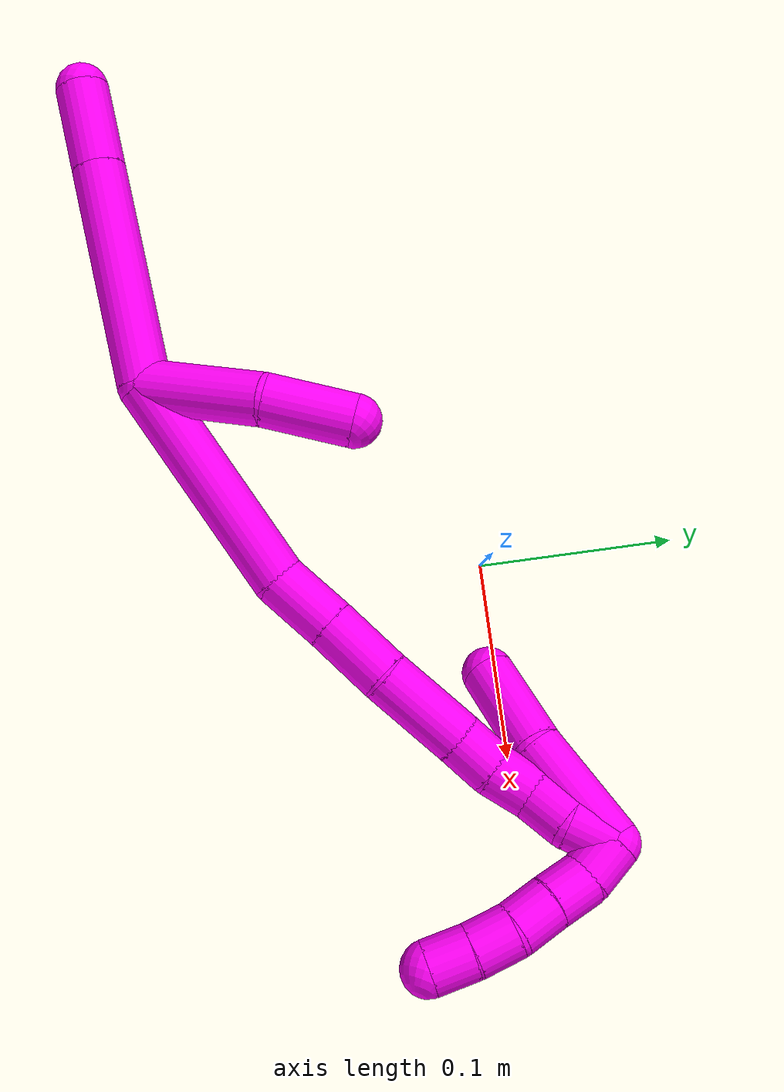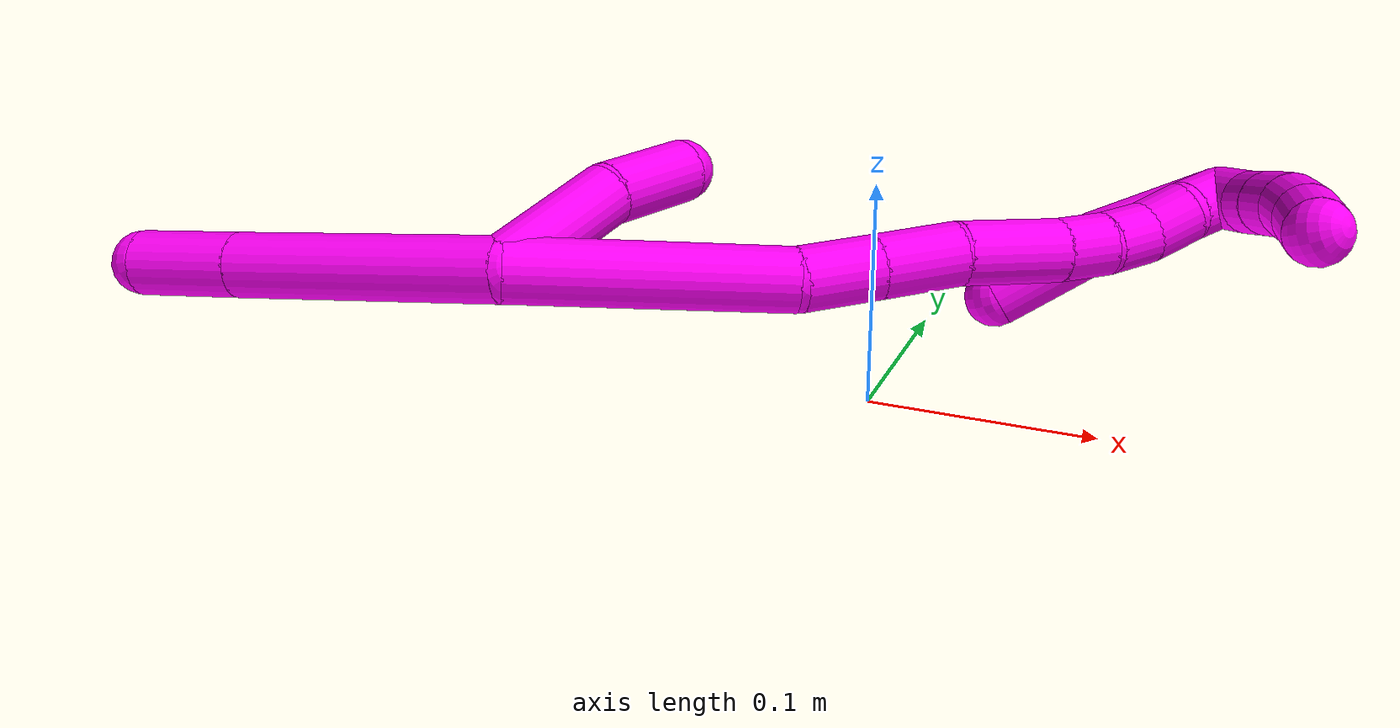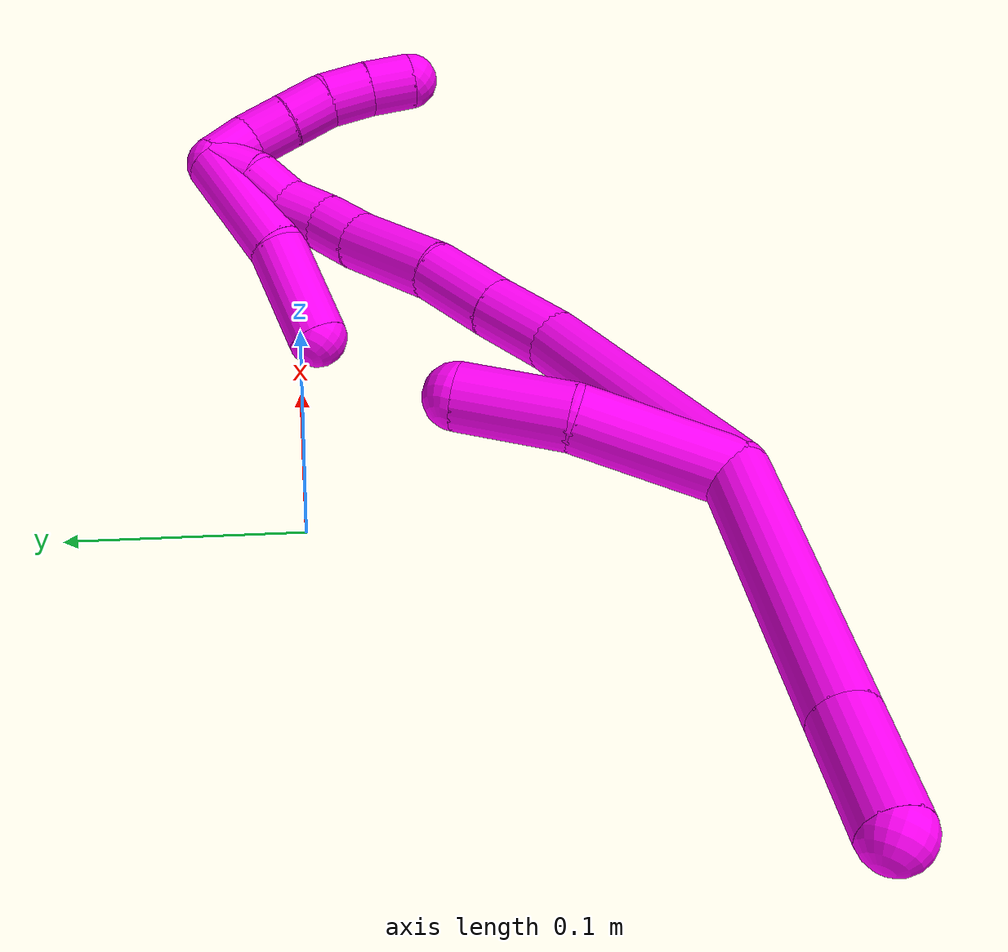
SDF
<sdf version="1.7">
 <world name="default">
  <model name="10">
   <static>0</static>
   <link name="10">
    <collision name="collision-cylinder-e_1_2_8">
     <pose>-0.026856 -0.021586 -0.041759 2.66451 -0.519043 -1.65856</pose>
     <geometry><cylinder><radius>0.0125</radius><length>0.108278</length></cylinder></geometry>
     <surface>
      <friction><ode><mu>1.16</mu><mu2>1.16</mu2><slip1>0</slip1><slip2>0</slip2></ode></friction>
      <contact><ode><kp>1e+06</kp><kd>1</kd><max_vel>0</max_vel><min_depth>0.001</min_depth></ode></contact>
     </surface>
    </collision>
    <visual name="visual-cylinder-e_1_2_8">
     <pose>-0.026856 -0.021586 -0.041759 2.66451 -0.519043 -1.65856</pose>
     <geometry><cylinder><radius>0.0125</radius><length>0.108278</length></cylinder></geometry>
     <material><ambient>1 0 0.964706 1</ambient></material>
    </visual>
    <collision name="collision-cylinder-e_2_8_6">
     <pose>-0.064142 -0.051414 -0.099595 2.66788 -0.523632 -1.67506</pose>
     <geometry><cylinder><radius>0.0125</radius><length>0.041722</length></cylinder></geometry>
     <surface>
      <friction><ode><mu>1.16</mu><mu2>1.16</mu2><slip1>0</slip1><slip2>0</slip2></ode></friction>
      <contact><ode><kp>1e+06</kp><kd>1</kd><max_vel>0</max_vel><min_depth>0.001</min_depth></ode></contact>
     </surface>
    </collision>
    <visual name="visual-cylinder-e_2_8_6">
     <pose>-0.064142 -0.051414 -0.099595 2.66788 -0.523632 -1.67506</pose>
     <geometry><cylinder><radius>0.0125</radius><length>0.041722</length></cylinder></geometry>
     <material><ambient>1 0 0.964706 1</ambient></material>
    </visual>
    <collision name="collision-cylinder-e_1_2_9">
     <pose>0.005273 0.028483 -0.003415 -1.69011 0.181771 -0.204711</pose>
     <geometry><cylinder><radius>0.0125</radius><length>0.058336</length></cylinder></geometry>
     <surface>
      <friction><ode><mu>1.16</mu><mu2>1.16</mu2><slip1>0</slip1><slip2>0</slip2></ode></friction>
      <contact><ode><kp>1e+06</kp><kd>1</kd><max_vel>0</max_vel><min_depth>0.001</min_depth></ode></contact>
     </surface>
    </collision>
    <visual name="visual-cylinder-e_1_2_9">
     <pose>0.005273 0.028483 -0.003415 -1.69011 0.181771 -0.204711</pose>
     <geometry><cylinder><radius>0.0125</radius><length>0.058336</length></cylinder></geometry>
     <material><ambient>1 0 0.964706 1</ambient></material>
    </visual>
    <collision name="collision-cylinder-e_2_9_5">
     <pose>0.019236 0.075628 -0.010023 -1.74033 0.430343 -0.507135</pose>
     <geometry><cylinder><radius>0.0125</radius><length>0.041664</length></cylinder></geometry>
     <surface>
      <friction><ode><mu>1.16</mu><mu2>1.16</mu2><slip1>0</slip1><slip2>0</slip2></ode></friction>
      <contact><ode><kp>1e+06</kp><kd>1</kd><max_vel>0</max_vel><min_depth>0.001</min_depth></ode></contact>
     </surface>
    </collision>
    <visual name="visual-cylinder-e_2_9_5">
     <pose>0.019236 0.075628 -0.010023 -1.74033 0.430343 -0.507135</pose>
     <geometry><cylinder><radius>0.0125</radius><length>0.041664</length></cylinder></geometry>
     <material><ambient>1 0 0.964706 1</ambient></material>
    </visual>
    <collision name="collision-cylinder-e_1_2_10">
     <pose>0.035068 0.032531 0.024667 -0.92203 0.709688 -0.364019</pose>
     <geometry><cylinder><radius>0.0125</radius><length>0.107638</length></cylinder></geometry>
     <surface>
      <friction><ode><mu>1.16</mu><mu2>1.16</mu2><slip1>0</slip1><slip2>0</slip2></ode></friction>
      <contact><ode><kp>1e+06</kp><kd>1</kd><max_vel>0</max_vel><min_depth>0.001</min_depth></ode></contact>
     </surface>
    </collision>
    <visual name="visual-cylinder-e_1_2_10">
     <pose>0.035068 0.032531 0.024667 -0.92203 0.709688 -0.364019</pose>
     <geometry><cylinder><radius>0.0125</radius><length>0.107638</length></cylinder></geometry>
     <material><ambient>1 0 0.964706 1</ambient></material>
    </visual>
    <collision name="collision-cylinder-e_2_10_11">
     <pose>0.078709 0.077451 0.054066 -1.20591 0.573813 -0.400818</pose>
     <geometry><cylinder><radius>0.0125</radius><length>0.031584</length></cylinder></geometry>
     <surface>
      <friction><ode><mu>1.16</mu><mu2>1.16</mu2><slip1>0</slip1><slip2>0</slip2></ode></friction>
      <contact><ode><kp>1e+06</kp><kd>1</kd><max_vel>0</max_vel><min_depth>0.001</min_depth></ode></contact>
     </surface>
    </collision>
    <visual name="visual-cylinder-e_2_10_11">
     <pose>0.078709 0.077451 0.054066 -1.20591 0.573813 -0.400818</pose>
     <geometry><cylinder><radius>0.0125</radius><length>0.031584</length></cylinder></geometry>
     <material><ambient>1 0 0.964706 1</ambient></material>
    </visual>
    <collision name="collision-cylinder-e_3_11_12">
     <pose>0.096221 0.102908 0.064431 -1.16384 0.560922 -0.374588</pose>
     <geometry><cylinder><radius>0.0125</radius><length>0.033608</length></cylinder></geometry>
     <surface>
      <friction><ode><mu>1.16</mu><mu2>1.16</mu2><slip1>0</slip1><slip2>0</slip2></ode></friction>
      <contact><ode><kp>1e+06</kp><kd>1</kd><max_vel>0</max_vel><min_depth>0.001</min_depth></ode></contact>
     </surface>
    </collision>
    <visual name="visual-cylinder-e_3_11_12">
     <pose>0.096221 0.102908 0.064431 -1.16384 0.560922 -0.374588</pose>
     <geometry><cylinder><radius>0.0125</radius><length>0.033608</length></cylinder></geometry>
     <material><ambient>1 0 0.964706 1</ambient></material>
    </visual>
    <collision name="collision-cylinder-e_4_12_13">
     <pose>0.119219 0.132059 0.075293 -1.25641 0.693518 -0.513382</pose>
     <geometry><cylinder><radius>0.0125</radius><length>0.043988</length></cylinder></geometry>
     <surface>
      <friction><ode><mu>1.16</mu><mu2>1.16</mu2><slip1>0</slip1><slip2>0</slip2></ode></friction>
      <contact><ode><kp>1e+06</kp><kd>1</kd><max_vel>0</max_vel><min_depth>0.001</min_depth></ode></contact>
     </surface>
    </collision>
    <visual name="visual-cylinder-e_4_12_13">
     <pose>0.119219 0.132059 0.075293 -1.25641 0.693518 -0.513382</pose>
     <geometry><cylinder><radius>0.0125</radius><length>0.043988</length></cylinder></geometry>
     <material><ambient>1 0 0.964706 1</ambient></material>
    </visual>
    <collision name="collision-cylinder-e_5_13_14">
     <pose>0.139152 0.156225 0.083612 -1.20568 0.596383 -0.416968</pose>
     <geometry><cylinder><radius>0.0125</radius><length>0.020914</length></cylinder></geometry>
     <surface>
      <friction><ode><mu>1.16</mu><mu2>1.16</mu2><slip1>0</slip1><slip2>0</slip2></ode></friction>
      <contact><ode><kp>1e+06</kp><kd>1</kd><max_vel>0</max_vel><min_depth>0.001</min_depth></ode></contact>
     </surface>
    </collision>
    <visual name="visual-cylinder-e_5_13_14">
     <pose>0.139152 0.156225 0.083612 -1.20568 0.596383 -0.416968</pose>
     <geometry><cylinder><radius>0.0125</radius><length>0.020914</length></cylinder></geometry>
     <material><ambient>1 0 0.964706 1</ambient></material>
    </visual>
    <collision name="collision-cylinder-e_6_14_15">
     <pose>0.150043 0.1732 0.088226 -1.40101 0.507469 -0.430521</pose>
     <geometry><cylinder><radius>0.0125</radius><length>0.020648</length></cylinder></geometry>
     <surface>
      <friction><ode><mu>1.16</mu><mu2>1.16</mu2><slip1>0</slip1><slip2>0</slip2></ode></friction>
      <contact><ode><kp>1e+06</kp><kd>1</kd><max_vel>0</max_vel><min_depth>0.001</min_depth></ode></contact>
     </surface>
    </collision>
    <visual name="visual-cylinder-e_6_14_15">
     <pose>0.150043 0.1732 0.088226 -1.40101 0.507469 -0.430521</pose>
     <geometry><cylinder><radius>0.0125</radius><length>0.020648</length></cylinder></geometry>
     <material><ambient>1 0 0.964706 1</ambient></material>
    </visual>
    <collision name="collision-cylinder-e_7_15_16">
     <pose>0.157959 0.191234 0.093325 -1.19805 0.28718 -0.196782</pose>
     <geometry><cylinder><radius>0.0125</radius><length>0.020469</length></cylinder></geometry>
     <surface>
      <friction><ode><mu>1.16</mu><mu2>1.16</mu2><slip1>0</slip1><slip2>0</slip2></ode></friction>
      <contact><ode><kp>1e+06</kp><kd>1</kd><max_vel>0</max_vel><min_depth>0.001</min_depth></ode></contact>
     </surface>
    </collision>
    <visual name="visual-cylinder-e_7_15_16">
     <pose>0.157959 0.191234 0.093325 -1.19805 0.28718 -0.196782</pose>
     <geometry><cylinder><radius>0.0125</radius><length>0.020469</length></cylinder></geometry>
     <material><ambient>1 0 0.964706 1</ambient></material>
    </visual>
    <collision name="collision-cylinder-e_8_16_1">
     <pose>0.165248 0.209967 0.097655 -1.49224 0.428087 -0.396587</pose>
     <geometry><cylinder><radius>0.0125</radius><length>0.021151</length></cylinder></geometry>
     <surface>
      <friction><ode><mu>1.16</mu><mu2>1.16</mu2><slip1>0</slip1><slip2>0</slip2></ode></friction>
      <contact><ode><kp>1e+06</kp><kd>1</kd><max_vel>0</max_vel><min_depth>0.001</min_depth></ode></contact>
     </surface>
    </collision>
    <visual name="visual-cylinder-e_8_16_1">
     <pose>0.165248 0.209967 0.097655 -1.49224 0.428087 -0.396587</pose>
     <geometry><cylinder><radius>0.0125</radius><length>0.021151</length></cylinder></geometry>
     <material><ambient>1 0 0.964706 1</ambient></material>
    </visual>
    <collision name="collision-cylinder-e_1_1_17">
     <pose>0.169747 0.215862 0.107701 0.378621 0.010934 0.002095</pose>
     <geometry><cylinder><radius>0.0125</radius><length>0.02</length></cylinder></geometry>
     <surface>
      <friction><ode><mu>1.16</mu><mu2>1.16</mu2><slip1>0</slip1><slip2>0</slip2></ode></friction>
      <contact><ode><kp>1e+06</kp><kd>1</kd><max_vel>0</max_vel><min_depth>0.001</min_depth></ode></contact>
     </surface>
    </collision>
    <visual name="visual-cylinder-e_1_1_17">
     <pose>0.169747 0.215862 0.107701 0.378621 0.010934 0.002095</pose>
     <geometry><cylinder><radius>0.0125</radius><length>0.02</length></cylinder></geometry>
     <material><ambient>1 0 0.964706 1</ambient></material>
    </visual>
    <collision name="collision-cylinder-e_2_17_18">
     <pose>0.167398 0.207037 0.125217 0.557665 -0.248366 -0.071442</pose>
     <geometry><cylinder><radius>0.0125</radius><length>0.02</length></cylinder></geometry>
     <surface>
      <friction><ode><mu>1.16</mu><mu2>1.16</mu2><slip1>0</slip1><slip2>0</slip2></ode></friction>
      <contact><ode><kp>1e+06</kp><kd>1</kd><max_vel>0</max_vel><min_depth>0.001</min_depth></ode></contact>
     </surface>
    </collision>
    <visual name="visual-cylinder-e_2_17_18">
     <pose>0.167398 0.207037 0.125217 0.557665 -0.248366 -0.071442</pose>
     <geometry><cylinder><radius>0.0125</radius><length>0.02</length></cylinder></geometry>
     <material><ambient>1 0 0.964706 1</ambient></material>
    </visual>
    <collision name="collision-cylinder-e_3_18_19">
     <pose>0.163019 0.196851 0.141853 0.541231 -0.193332 -0.053789</pose>
     <geometry><cylinder><radius>0.0125</radius><length>0.02</length></cylinder></geometry>
     <surface>
      <friction><ode><mu>1.16</mu><mu2>1.16</mu2><slip1>0</slip1><slip2>0</slip2></ode></friction>
      <contact><ode><kp>1e+06</kp><kd>1</kd><max_vel>0</max_vel><min_depth>0.001</min_depth></ode></contact>
     </surface>
    </collision>
    <visual name="visual-cylinder-e_3_18_19">
     <pose>0.163019 0.196851 0.141853 0.541231 -0.193332 -0.053789</pose>
     <geometry><cylinder><radius>0.0125</radius><length>0.02</length></cylinder></geometry>
     <material><ambient>1 0 0.964706 1</ambient></material>
    </visual>
    <collision name="collision-cylinder-e_4_19_20">
     <pose>0.15952 0.185082 0.157506 0.747525 -0.158387 -0.062229</pose>
     <geometry><cylinder><radius>0.0125</radius><length>0.02</length></cylinder></geometry>
     <surface>
      <friction><ode><mu>1.16</mu><mu2>1.16</mu2><slip1>0</slip1><slip2>0</slip2></ode></friction>
      <contact><ode><kp>1e+06</kp><kd>1</kd><max_vel>0</max_vel><min_depth>0.001</min_depth></ode></contact>
     </surface>
    </collision>
    <visual name="visual-cylinder-e_4_19_20">
     <pose>0.15952 0.185082 0.157506 0.747525 -0.158387 -0.062229</pose>
     <geometry><cylinder><radius>0.0125</radius><length>0.02</length></cylinder></geometry>
     <material><ambient>1 0 0.964706 1</ambient></material>
    </visual>
    <collision name="collision-cylinder-e_5_20_4">
     <pose>0.156259 0.170955 0.171244 0.85121 -0.169227 -0.076859</pose>
     <geometry><cylinder><radius>0.0125</radius><length>0.02</length></cylinder></geometry>
     <surface>
      <friction><ode><mu>1.16</mu><mu2>1.16</mu2><slip1>0</slip1><slip2>0</slip2></ode></friction>
      <contact><ode><kp>1e+06</kp><kd>1</kd><max_vel>0</max_vel><min_depth>0.001</min_depth></ode></contact>
     </surface>
    </collision>
    <visual name="visual-cylinder-e_5_20_4">
     <pose>0.156259 0.170955 0.171244 0.85121 -0.169227 -0.076859</pose>
     <geometry><cylinder><radius>0.0125</radius><length>0.02</length></cylinder></geometry>
     <material><ambient>1 0 0.964706 1</ambient></material>
    </visual>
    <collision name="collision-cylinder-e_1_1_21">
     <pose>0.160921 0.198243 0.083414 2.18388 -0.322763 -0.607739</pose>
     <geometry><cylinder><radius>0.0125</radius><length>0.054963</length></cylinder></geometry>
     <surface>
      <friction><ode><mu>1.16</mu><mu2>1.16</mu2><slip1>0</slip1><slip2>0</slip2></ode></friction>
      <contact><ode><kp>1e+06</kp><kd>1</kd><max_vel>0</max_vel><min_depth>0.001</min_depth></ode></contact>
     </surface>
    </collision>
    <visual name="visual-cylinder-e_1_1_21">
     <pose>0.160921 0.198243 0.083414 2.18388 -0.322763 -0.607739</pose>
     <geometry><cylinder><radius>0.0125</radius><length>0.054963</length></cylinder></geometry>
     <material><ambient>1 0 0.964706 1</ambient></material>
    </visual>
    <collision name="collision-cylinder-e_2_21_3">
     <pose>0.149899 0.160285 0.053424 2.30411 -0.102567 -0.229644</pose>
     <geometry><cylinder><radius>0.0125</radius><length>0.045037</length></cylinder></geometry>
     <surface>
      <friction><ode><mu>1.16</mu><mu2>1.16</mu2><slip1>0</slip1><slip2>0</slip2></ode></friction>
      <contact><ode><kp>1e+06</kp><kd>1</kd><max_vel>0</max_vel><min_depth>0.001</min_depth></ode></contact>
     </surface>
    </collision>
    <visual name="visual-cylinder-e_2_21_3">
     <pose>0.149899 0.160285 0.053424 2.30411 -0.102567 -0.229644</pose>
     <geometry><cylinder><radius>0.0125</radius><length>0.045037</length></cylinder></geometry>
     <material><ambient>1 0 0.964706 1</ambient></material>
    </visual>
    <collision name="collision-sphere-3">
     <pose>0.147593 0.143642 0.038431 0 -0 0</pose>
     <geometry><sphere><radius>0.0125</radius></sphere></geometry>
     <surface>
      <friction><ode><mu>1.16</mu><mu2>1.16</mu2><slip1>0</slip1><slip2>0</slip2></ode></friction>
      <contact><ode><kp>1e+06</kp><kd>1</kd><max_vel>0</max_vel><min_depth>0.001</min_depth></ode></contact>
     </surface>
    </collision>
    <visual name="visual-sphere-3">
     <pose>0.147593 0.143642 0.038431 0 -0 0</pose>
     <geometry><sphere><radius>0.0125</radius></sphere></geometry>
     <material><ambient>1 0 0.964706 1</ambient></material>
    </visual>
    <collision name="collision-sphere-21">
     <pose>0.152204 0.176927 0.068418 0 -0 0</pose>
     <geometry><sphere><radius>0.0125</radius></sphere></geometry>
     <surface>
      <friction><ode><mu>1.16</mu><mu2>1.16</mu2><slip1>0</slip1><slip2>0</slip2></ode></friction>
      <contact><ode><kp>1e+06</kp><kd>1</kd><max_vel>0</max_vel><min_depth>0.001</min_depth></ode></contact>
     </surface>
    </collision>
    <visual name="visual-sphere-21">
     <pose>0.152204 0.176927 0.068418 0 -0 0</pose>
     <geometry><sphere><radius>0.0125</radius></sphere></geometry>
     <material><ambient>1 0 0.964706 1</ambient></material>
    </visual>
    <collision name="collision-sphere-4">
     <pose>0.154575 0.163542 0.177741 0 -0 0</pose>
     <geometry><sphere><radius>0.0125</radius></sphere></geometry>
     <surface>
      <friction><ode><mu>1.16</mu><mu2>1.16</mu2><slip1>0</slip1><slip2>0</slip2></ode></friction>
      <contact><ode><kp>1e+06</kp><kd>1</kd><max_vel>0</max_vel><min_depth>0.001</min_depth></ode></contact>
     </surface>
    </collision>
    <visual name="visual-sphere-4">
     <pose>0.154575 0.163542 0.177741 0 -0 0</pose>
     <geometry><sphere><radius>0.0125</radius></sphere></geometry>
     <material><ambient>1 0 0.964706 1</ambient></material>
    </visual>
    <collision name="collision-sphere-20">
     <pose>0.157943 0.178369 0.164748 0 -0 0</pose>
     <geometry><sphere><radius>0.0125</radius></sphere></geometry>
     <surface>
      <friction><ode><mu>1.16</mu><mu2>1.16</mu2><slip1>0</slip1><slip2>0</slip2></ode></friction>
      <contact><ode><kp>1e+06</kp><kd>1</kd><max_vel>0</max_vel><min_depth>0.001</min_depth></ode></contact>
     </surface>
    </collision>
    <visual name="visual-sphere-20">
     <pose>0.157943 0.178369 0.164748 0 -0 0</pose>
     <geometry><sphere><radius>0.0125</radius></sphere></geometry>
     <material><ambient>1 0 0.964706 1</ambient></material>
    </visual>
    <collision name="collision-sphere-10">
     <pose>0.070137 0.065061 0.049333 0 -0 0</pose>
     <geometry><sphere><radius>0.0125</radius></sphere></geometry>
     <surface>
      <friction><ode><mu>1.16</mu><mu2>1.16</mu2><slip1>0</slip1><slip2>0</slip2></ode></friction>
      <contact><ode><kp>1e+06</kp><kd>1</kd><max_vel>0</max_vel><min_depth>0.001</min_depth></ode></contact>
     </surface>
    </collision>
    <visual name="visual-sphere-10">
     <pose>0.070137 0.065061 0.049333 0 -0 0</pose>
     <geometry><sphere><radius>0.0125</radius></sphere></geometry>
     <material><ambient>1 0 0.964706 1</ambient></material>
    </visual>
    <collision name="collision-sphere-5">
     <pose>0.027927 0.094289 -0.013218 0 -0 0</pose>
     <geometry><sphere><radius>0.0125</radius></sphere></geometry>
     <surface>
      <friction><ode><mu>1.16</mu><mu2>1.16</mu2><slip1>0</slip1><slip2>0</slip2></ode></friction>
      <contact><ode><kp>1e+06</kp><kd>1</kd><max_vel>0</max_vel><min_depth>0.001</min_depth></ode></contact>
     </surface>
    </collision>
    <visual name="visual-sphere-5">
     <pose>0.027927 0.094289 -0.013218 0 -0 0</pose>
     <geometry><sphere><radius>0.0125</radius></sphere></geometry>
     <material><ambient>1 0 0.964706 1</ambient></material>
    </visual>
    <collision name="collision-sphere-6">
     <pose>-0.074573 -0.059655 -0.115672 0 -0 0</pose>
     <geometry><sphere><radius>0.0125</radius></sphere></geometry>
     <surface>
      <friction><ode><mu>1.16</mu><mu2>1.16</mu2><slip1>0</slip1><slip2>0</slip2></ode></friction>
      <contact><ode><kp>1e+06</kp><kd>1</kd><max_vel>0</max_vel><min_depth>0.001</min_depth></ode></contact>
     </surface>
    </collision>
    <visual name="visual-sphere-6">
     <pose>-0.074573 -0.059655 -0.115672 0 -0 0</pose>
     <geometry><sphere><radius>0.0125</radius></sphere></geometry>
     <material><ambient>1 0 0.964706 1</ambient></material>
    </visual>
    <collision name="collision-sphere-9">
     <pose>0.010545 0.056967 -0.006829 0 -0 0</pose>
     <geometry><sphere><radius>0.0125</radius></sphere></geometry>
     <surface>
      <friction><ode><mu>1.16</mu><mu2>1.16</mu2><slip1>0</slip1><slip2>0</slip2></ode></friction>
      <contact><ode><kp>1e+06</kp><kd>1</kd><max_vel>0</max_vel><min_depth>0.001</min_depth></ode></contact>
     </surface>
    </collision>
    <visual name="visual-sphere-9">
     <pose>0.010545 0.056967 -0.006829 0 -0 0</pose>
     <geometry><sphere><radius>0.0125</radius></sphere></geometry>
     <material><ambient>1 0 0.964706 1</ambient></material>
    </visual>
    <collision name="collision-sphere-2">
     <geometry><sphere><radius>0.0125</radius></sphere></geometry>
     <surface>
      <friction><ode><mu>1.16</mu><mu2>1.16</mu2><slip1>0</slip1><slip2>0</slip2></ode></friction>
      <contact><ode><kp>1e+06</kp><kd>1</kd><max_vel>0</max_vel><min_depth>0.001</min_depth></ode></contact>
     </surface>
    </collision>
    <visual name="visual-sphere-2">
     <geometry><sphere><radius>0.0125</radius></sphere></geometry>
     <material><ambient>1 0 0.964706 1</ambient></material>
    </visual>
    <collision name="collision-sphere-19">
     <pose>0.161098 0.191795 0.150264 0 -0 0</pose>
     <geometry><sphere><radius>0.0125</radius></sphere></geometry>
     <surface>
      <friction><ode><mu>1.16</mu><mu2>1.16</mu2><slip1>0</slip1><slip2>0</slip2></ode></friction>
      <contact><ode><kp>1e+06</kp><kd>1</kd><max_vel>0</max_vel><min_depth>0.001</min_depth></ode></contact>
     </surface>
    </collision>
    <visual name="visual-sphere-19">
     <pose>0.161098 0.191795 0.150264 0 -0 0</pose>
     <geometry><sphere><radius>0.0125</radius></sphere></geometry>
     <material><ambient>1 0 0.964706 1</ambient></material>
    </visual>
    <collision name="collision-sphere-8">
     <pose>-0.053711 -0.043172 -0.083519 0 -0 0</pose>
     <geometry><sphere><radius>0.0125</radius></sphere></geometry>
     <surface>
      <friction><ode><mu>1.16</mu><mu2>1.16</mu2><slip1>0</slip1><slip2>0</slip2></ode></friction>
      <contact><ode><kp>1e+06</kp><kd>1</kd><max_vel>0</max_vel><min_depth>0.001</min_depth></ode></contact>
     </surface>
    </collision>
    <visual name="visual-sphere-8">
     <pose>-0.053711 -0.043172 -0.083519 0 -0 0</pose>
     <geometry><sphere><radius>0.0125</radius></sphere></geometry>
     <material><ambient>1 0 0.964706 1</ambient></material>
    </visual>
    <collision name="collision-sphere-11">
     <pose>0.087282 0.08984 0.058799 0 -0 0</pose>
     <geometry><sphere><radius>0.0125</radius></sphere></geometry>
     <surface>
      <friction><ode><mu>1.16</mu><mu2>1.16</mu2><slip1>0</slip1><slip2>0</slip2></ode></friction>
      <contact><ode><kp>1e+06</kp><kd>1</kd><max_vel>0</max_vel><min_depth>0.001</min_depth></ode></contact>
     </surface>
    </collision>
    <visual name="visual-sphere-11">
     <pose>0.087282 0.08984 0.058799 0 -0 0</pose>
     <geometry><sphere><radius>0.0125</radius></sphere></geometry>
     <material><ambient>1 0 0.964706 1</ambient></material>
    </visual>
    <collision name="collision-sphere-12">
     <pose>0.10516 0.115975 0.070063 0 -0 0</pose>
     <geometry><sphere><radius>0.0125</radius></sphere></geometry>
     <surface>
      <friction><ode><mu>1.16</mu><mu2>1.16</mu2><slip1>0</slip1><slip2>0</slip2></ode></friction>
      <contact><ode><kp>1e+06</kp><kd>1</kd><max_vel>0</max_vel><min_depth>0.001</min_depth></ode></contact>
     </surface>
    </collision>
    <visual name="visual-sphere-12">
     <pose>0.10516 0.115975 0.070063 0 -0 0</pose>
     <geometry><sphere><radius>0.0125</radius></sphere></geometry>
     <material><ambient>1 0 0.964706 1</ambient></material>
    </visual>
    <collision name="collision-sphere-13">
     <pose>0.133279 0.148143 0.080523 0 -0 0</pose>
     <geometry><sphere><radius>0.0125</radius></sphere></geometry>
     <surface>
      <friction><ode><mu>1.16</mu><mu2>1.16</mu2><slip1>0</slip1><slip2>0</slip2></ode></friction>
      <contact><ode><kp>1e+06</kp><kd>1</kd><max_vel>0</max_vel><min_depth>0.001</min_depth></ode></contact>
     </surface>
    </collision>
    <visual name="visual-sphere-13">
     <pose>0.133279 0.148143 0.080523 0 -0 0</pose>
     <geometry><sphere><radius>0.0125</radius></sphere></geometry>
     <material><ambient>1 0 0.964706 1</ambient></material>
    </visual>
    <collision name="collision-sphere-14">
     <pose>0.145025 0.164306 0.086702 0 -0 0</pose>
     <geometry><sphere><radius>0.0125</radius></sphere></geometry>
     <surface>
      <friction><ode><mu>1.16</mu><mu2>1.16</mu2><slip1>0</slip1><slip2>0</slip2></ode></friction>
      <contact><ode><kp>1e+06</kp><kd>1</kd><max_vel>0</max_vel><min_depth>0.001</min_depth></ode></contact>
     </surface>
    </collision>
    <visual name="visual-sphere-14">
     <pose>0.145025 0.164306 0.086702 0 -0 0</pose>
     <geometry><sphere><radius>0.0125</radius></sphere></geometry>
     <material><ambient>1 0 0.964706 1</ambient></material>
    </visual>
    <collision name="collision-sphere-15">
     <pose>0.15506 0.182093 0.089751 0 -0 0</pose>
     <geometry><sphere><radius>0.0125</radius></sphere></geometry>
     <surface>
      <friction><ode><mu>1.16</mu><mu2>1.16</mu2><slip1>0</slip1><slip2>0</slip2></ode></friction>
      <contact><ode><kp>1e+06</kp><kd>1</kd><max_vel>0</max_vel><min_depth>0.001</min_depth></ode></contact>
     </surface>
    </collision>
    <visual name="visual-sphere-15">
     <pose>0.15506 0.182093 0.089751 0 -0 0</pose>
     <geometry><sphere><radius>0.0125</radius></sphere></geometry>
     <material><ambient>1 0 0.964706 1</ambient></material>
    </visual>
    <collision name="collision-sphere-16">
     <pose>0.160858 0.200376 0.0969 0 -0 0</pose>
     <geometry><sphere><radius>0.0125</radius></sphere></geometry>
     <surface>
      <friction><ode><mu>1.16</mu><mu2>1.16</mu2><slip1>0</slip1><slip2>0</slip2></ode></friction>
      <contact><ode><kp>1e+06</kp><kd>1</kd><max_vel>0</max_vel><min_depth>0.001</min_depth></ode></contact>
     </surface>
    </collision>
    <visual name="visual-sphere-16">
     <pose>0.160858 0.200376 0.0969 0 -0 0</pose>
     <geometry><sphere><radius>0.0125</radius></sphere></geometry>
     <material><ambient>1 0 0.964706 1</ambient></material>
    </visual>
    <collision name="collision-sphere-1">
     <pose>0.169638 0.219559 0.09841 0 -0 0</pose>
     <geometry><sphere><radius>0.0125</radius></sphere></geometry>
     <surface>
      <friction><ode><mu>1.16</mu><mu2>1.16</mu2><slip1>0</slip1><slip2>0</slip2></ode></friction>
      <contact><ode><kp>1e+06</kp><kd>1</kd><max_vel>0</max_vel><min_depth>0.001</min_depth></ode></contact>
     </surface>
    </collision>
    <visual name="visual-sphere-1">
     <pose>0.169638 0.219559 0.09841 0 -0 0</pose>
     <geometry><sphere><radius>0.0125</radius></sphere></geometry>
     <material><ambient>1 0 0.964706 1</ambient></material>
    </visual>
    <collision name="collision-sphere-18">
     <pose>0.16494 0.201907 0.133442 0 -0 0</pose>
     <geometry><sphere><radius>0.0125</radius></sphere></geometry>
     <surface>
      <friction><ode><mu>1.16</mu><mu2>1.16</mu2><slip1>0</slip1><slip2>0</slip2></ode></friction>
      <contact><ode><kp>1e+06</kp><kd>1</kd><max_vel>0</max_vel><min_depth>0.001</min_depth></ode></contact>
     </surface>
    </collision>
    <visual name="visual-sphere-18">
     <pose>0.16494 0.201907 0.133442 0 -0 0</pose>
     <geometry><sphere><radius>0.0125</radius></sphere></geometry>
     <material><ambient>1 0 0.964706 1</ambient></material>
    </visual>
    <collision name="collision-sphere-17">
     <pose>0.169857 0.212166 0.116993 0 -0 0</pose>
     <geometry><sphere><radius>0.0125</radius></sphere></geometry>
     <surface>
      <friction><ode><mu>1.16</mu><mu2>1.16</mu2><slip1>0</slip1><slip2>0</slip2></ode></friction>
      <contact><ode><kp>1e+06</kp><kd>1</kd><max_vel>0</max_vel><min_depth>0.001</min_depth></ode></contact>
     </surface>
    </collision>
    <visual name="visual-sphere-17">
     <pose>0.169857 0.212166 0.116993 0 -0 0</pose>
     <geometry><sphere><radius>0.0125</radius></sphere></geometry>
     <material><ambient>1 0 0.964706 1</ambient></material>
    </visual>
    <inertial>
     <pose>0.07322 0.091167 0.038872 0 -0 0</pose>
     <mass>0.75</mass>
     <inertia>
      <ixx>-1.2e-05</ixx>
      <ixy>0</ixy>
      <ixz>0</ixz>
      <iyy>-2.5e-05</iyy>
      <iyz>0</iyz>
      <izz>-6.4e-05</izz>
     </inertia>
    </inertial>
   </link>
   <pose>-0.097132 -0.146784 0.09998 0.84002 0.932205 0.412244</pose>
  </model>
 </world>
</sdf>
